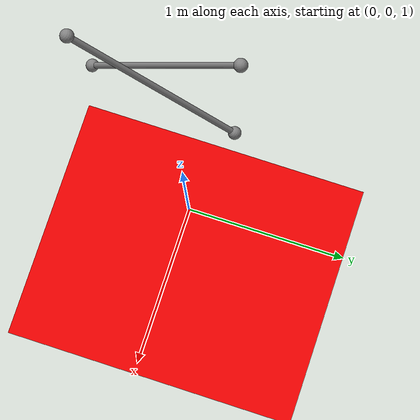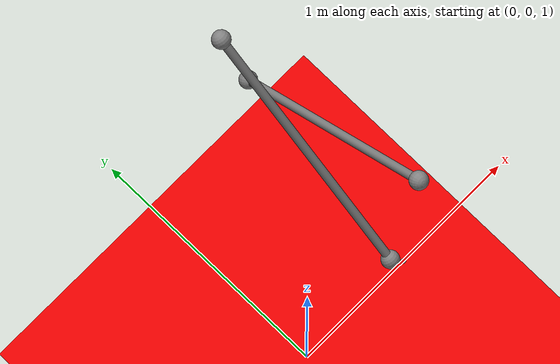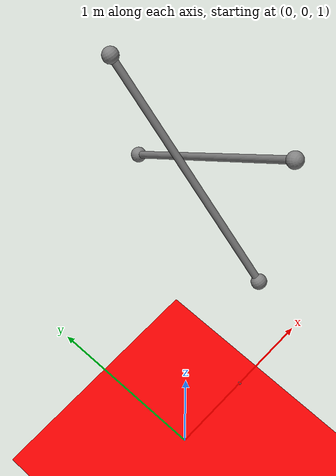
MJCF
<mujoco>
   <option gravity="0 0 0" timestep="0.01" />
   <default>
      <tendon limited="true" range="0.1 0.8" width="0.005" rgba="0.99 0. 0. 1"  stiffness="1" damping="0.5"/>
      <site type="sphere" size="0.005"/>

   </default>

   <worldbody>
      <light diffuse=".5 .5 .5" pos="0 0 3" dir="0 0 -1"/>

      <geom type="plane" size="1 1 0.1" rgba=".9 0 0 1"/>
      <site name="end2" pos="0.5 0 1" type="sphere" size="0.01"/>

      <body name="rod0_1" pos="0 0 4" euler="-45 0 0">
        <geom name="r01"  fromto="0 0 -0.5 0 0 0.5"  density="1000" type="cylinder" size="0.014" />
        <joint name="move0_1" type="free"/>
  			<body name="rod0_1_child1">
  				<geom name="r01_child1" pos="0 0 0.5" density="5000" mass="5" type="sphere"  size="0.03" friction="10 0.005 0.0001"/>
  				<site name="s0" pos="0 0 0.5"/>
  				<joint type="ball" pos="0 0 0.5"/>
  			</body>
  			<body name="rod0_1_child2">
  				<geom name="r01_child2" pos="0 0 -0.5" density="5000" mass="5" type="sphere"  size="0.03" friction="10 0.005 0.0001"/>
  				<site name="s1" pos="0 0 -0.5" />
  				<joint type="ball" pos="0 0 -0.5"/>
  			</body>
  		</body>

      <body name="rod2_3" pos="0.1 0 4" euler="45 0 0">
          <geom name="r23"  fromto="0 0 -0.5 0 0 0.5" density="1000" type="cylinder"  size="0.014"/>
          <joint name="move2_3" type="free"/>
  				<body name="rod2_3_child1">
  					<geom name="r23_child1" pos="0 0 0.5" density="5000" mass="5" type="sphere"  size="0.03" friction="10 0.005 0.0001"/>
          	<site name="s2" pos="0 0 0.5"/>
  					<joint type="ball" pos="0 0 0.5"/>
  				</body>
  				<body name="rod2_3_child2">
  					<geom name="r23_child2" pos="0 0 -0.5" density="5000" mass="5" type="sphere"  size="0.03" friction="10 0.005 0.0001"/>
  					<site name="s3" pos="0 0 -0.5" />
  					<joint type="ball" pos="0 0 -0.5"/>
  				</body>
      </body>

   </worldbody>

</mujoco>
